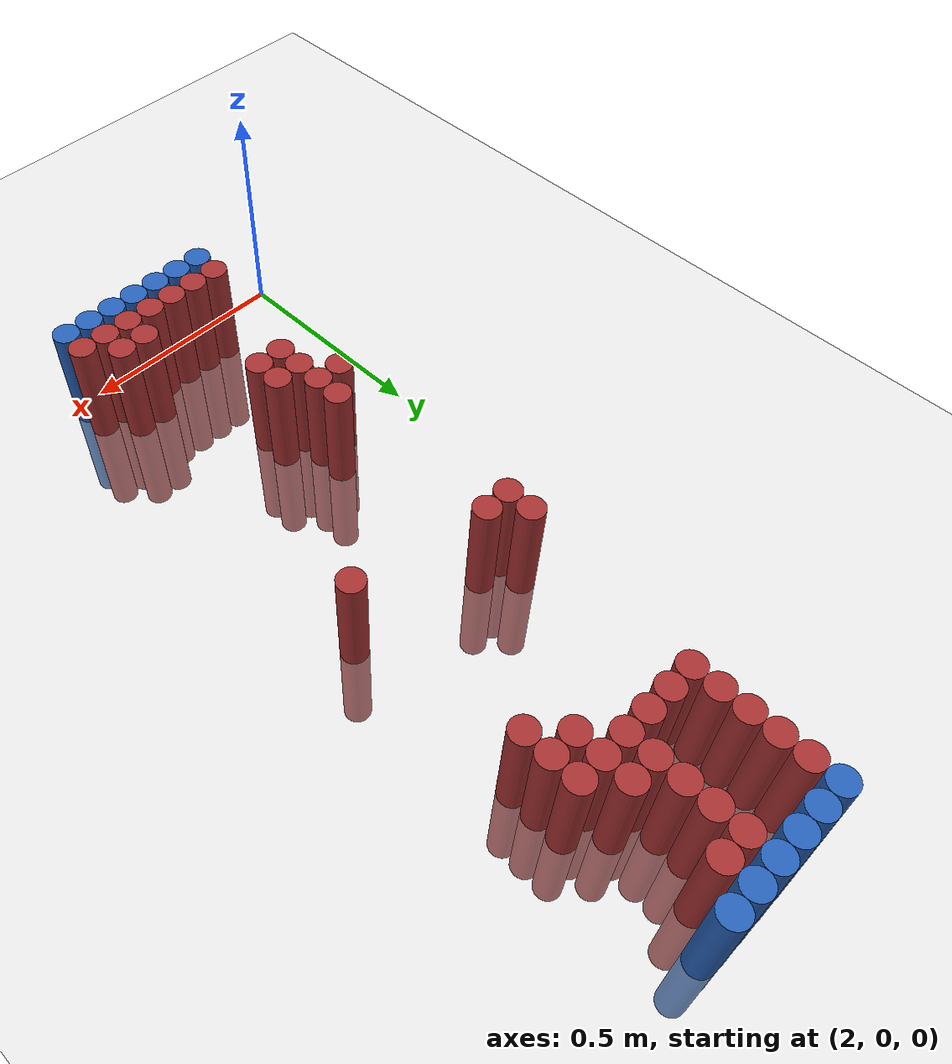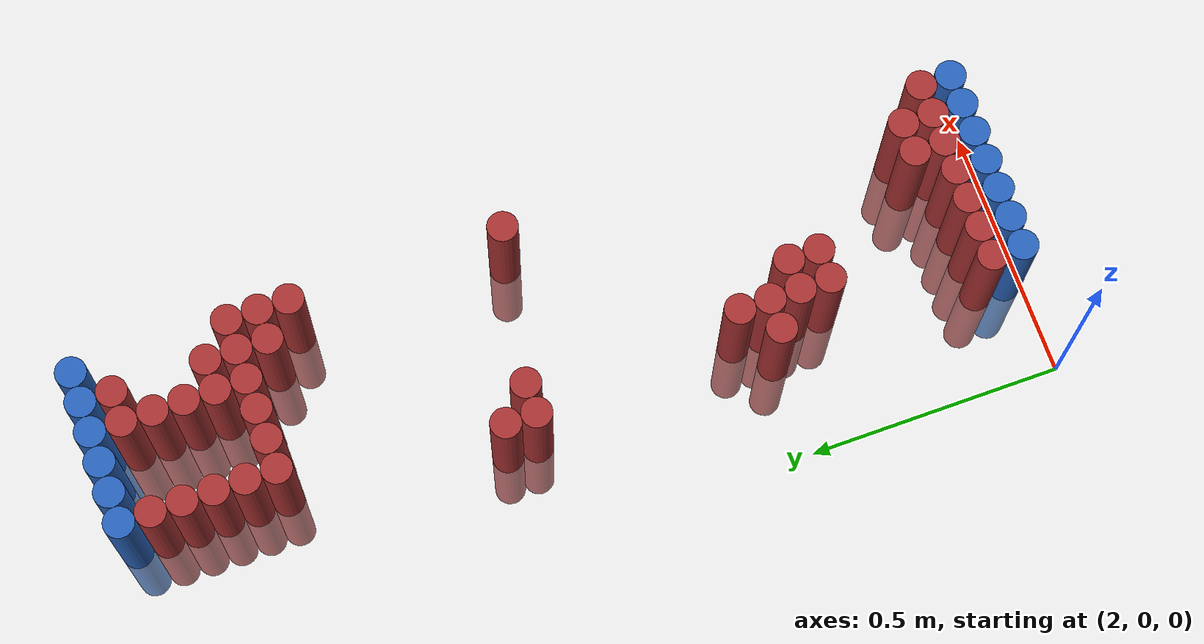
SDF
<sdf version="1.6">
 <world name="default">
  <model name="ground_plane">
   <static>1</static>
   <link name="link">
    <collision name="collision">
     <geometry><plane><normal>0 0 1</normal><size>100 100</size></plane></geometry>
     <surface><friction><ode><mu>100</mu><mu2>50</mu2></ode></friction></surface>
    </collision>
    <visual name="visual">
     <cast_shadows>0</cast_shadows>
     <geometry><plane><normal>0 0 1</normal><size>100 100</size></plane></geometry>
     <material>
      <script><uri>file://media/materials/scripts/gazebo.material</uri><name>Gazebo/Grey</name></script>
     </material>
    </visual>
   </link>
  </model>
  <model name="unit_cylinder_98">
   <static>1</static>
   <pose>2.250000 1.770000 0.000000 0.000000 0.000000 0.000000</pose>
   <link name="link">
    <inertial>
     <mass>1</mass>
     <inertia><ixx>0.145833</ixx><ixy>0</ixy><ixz>0</ixz><iyy>0.145833</iyy><iyz>0</iyz><izz>0.125</izz></inertia>
    </inertial>
    <collision name="collision">
     <geometry><cylinder><radius>0.030000</radius><length>0.5</length></cylinder></geometry>
    </collision>
    <visual name="visual">
     <geometry><cylinder><radius>0.030000</radius><length>0.5</length></cylinder></geometry>
     <material>
      <ambient>0.152000 0.379000 0.720000 1</ambient>
      <diffuse>0.152000 0.379000 0.720000 1</diffuse>
     </material>
     <material>
      <script><name>Gazebo/Grey</name><uri>file://media/materials/scripts/gazebo.material</uri></script>
     </material>
    </visual>
   </link>
  </model>
  <model name="unit_cylinder_99">
   <static>1</static>
   <pose>2.310000 1.770000 0.000000 0.000000 0.000000 0.000000</pose>
   <link name="link">
    <inertial>
     <mass>1</mass>
     <inertia><ixx>0.145833</ixx><ixy>0</ixy><ixz>0</ixz><iyy>0.145833</iyy><iyz>0</iyz><izz>0.125</izz></inertia>
    </inertial>
    <collision name="collision">
     <geometry><cylinder><radius>0.030000</radius><length>0.5</length></cylinder></geometry>
    </collision>
    <visual name="visual">
     <geometry><cylinder><radius>0.030000</radius><length>0.5</length></cylinder></geometry>
     <material>
      <ambient>0.152000 0.379000 0.720000 1</ambient>
      <diffuse>0.152000 0.379000 0.720000 1</diffuse>
     </material>
     <material>
      <script><name>Gazebo/Grey</name><uri>file://media/materials/scripts/gazebo.material</uri></script>
     </material>
    </visual>
   </link>
  </model>
  <model name="unit_cylinder_100">
   <static>1</static>
   <pose>2.370000 1.770000 0.000000 0.000000 0.000000 0.000000</pose>
   <link name="link">
    <inertial>
     <mass>1</mass>
     <inertia><ixx>0.145833</ixx><ixy>0</ixy><ixz>0</ixz><iyy>0.145833</iyy><iyz>0</iyz><izz>0.125</izz></inertia>
    </inertial>
    <collision name="collision">
     <geometry><cylinder><radius>0.030000</radius><length>0.5</length></cylinder></geometry>
    </collision>
    <visual name="visual">
     <geometry><cylinder><radius>0.030000</radius><length>0.5</length></cylinder></geometry>
     <material>
      <ambient>0.152000 0.379000 0.720000 1</ambient>
      <diffuse>0.152000 0.379000 0.720000 1</diffuse>
     </material>
     <material>
      <script><name>Gazebo/Grey</name><uri>file://media/materials/scripts/gazebo.material</uri></script>
     </material>
    </visual>
   </link>
  </model>
  <model name="unit_cylinder_101">
   <static>1</static>
   <pose>2.430000 1.770000 0.000000 0.000000 0.000000 0.000000</pose>
   <link name="link">
    <inertial>
     <mass>1</mass>
     <inertia><ixx>0.145833</ixx><ixy>0</ixy><ixz>0</ixz><iyy>0.145833</iyy><iyz>0</iyz><izz>0.125</izz></inertia>
    </inertial>
    <collision name="collision">
     <geometry><cylinder><radius>0.030000</radius><length>0.5</length></cylinder></geometry>
    </collision>
    <visual name="visual">
     <geometry><cylinder><radius>0.030000</radius><length>0.5</length></cylinder></geometry>
     <material>
      <ambient>0.152000 0.379000 0.720000 1</ambient>
      <diffuse>0.152000 0.379000 0.720000 1</diffuse>
     </material>
     <material>
      <script><name>Gazebo/Grey</name><uri>file://media/materials/scripts/gazebo.material</uri></script>
     </material>
    </visual>
   </link>
  </model>
  <model name="unit_cylinder_102">
   <static>1</static>
   <pose>2.490000 1.770000 0.000000 0.000000 0.000000 0.000000</pose>
   <link name="link">
    <inertial>
     <mass>1</mass>
     <inertia><ixx>0.145833</ixx><ixy>0</ixy><ixz>0</ixz><iyy>0.145833</iyy><iyz>0</iyz><izz>0.125</izz></inertia>
    </inertial>
    <collision name="collision">
     <geometry><cylinder><radius>0.030000</radius><length>0.5</length></cylinder></geometry>
    </collision>
    <visual name="visual">
     <geometry><cylinder><radius>0.030000</radius><length>0.5</length></cylinder></geometry>
     <material>
      <ambient>0.152000 0.379000 0.720000 1</ambient>
      <diffuse>0.152000 0.379000 0.720000 1</diffuse>
     </material>
     <material>
      <script><name>Gazebo/Grey</name><uri>file://media/materials/scripts/gazebo.material</uri></script>
     </material>
    </visual>
   </link>
  </model>
  <model name="unit_cylinder_103">
   <static>1</static>
   <pose>2.550000 1.770000 0.000000 0.000000 0.000000 0.000000</pose>
   <link name="link">
    <inertial>
     <mass>1</mass>
     <inertia><ixx>0.145833</ixx><ixy>0</ixy><ixz>0</ixz><iyy>0.145833</iyy><iyz>0</iyz><izz>0.125</izz></inertia>
    </inertial>
    <collision name="collision">
     <geometry><cylinder><radius>0.030000</radius><length>0.5</length></cylinder></geometry>
    </collision>
    <visual name="visual">
     <geometry><cylinder><radius>0.030000</radius><length>0.5</length></cylinder></geometry>
     <material>
      <ambient>0.152000 0.379000 0.720000 1</ambient>
      <diffuse>0.152000 0.379000 0.720000 1</diffuse>
     </material>
     <material>
      <script><name>Gazebo/Grey</name><uri>file://media/materials/scripts/gazebo.material</uri></script>
     </material>
    </visual>
   </link>
  </model>
  <model name="unit_cylinder_125">
   <static>1</static>
   <pose>2.250000 1.710000 0.000000 0.000000 0.000000 0.000000</pose>
   <link name="link">
    <inertial>
     <mass>1</mass>
     <inertia><ixx>0.145833</ixx><ixy>0</ixy><ixz>0</ixz><iyy>0.145833</iyy><iyz>0</iyz><izz>0.125</izz></inertia>
    </inertial>
    <collision name="collision">
     <geometry><cylinder><radius>0.030000</radius><length>0.5</length></cylinder></geometry>
    </collision>
    <visual name="visual">
     <geometry><cylinder><radius>0.030000</radius><length>0.5</length></cylinder></geometry>
     <material>
      <ambient>0.648000 0.192000 0.192000 1</ambient>
      <diffuse>0.648000 0.192000 0.192000 1</diffuse>
     </material>
     <material>
      <script><name>Gazebo/Grey</name><uri>file://media/materials/scripts/gazebo.material</uri></script>
     </material>
    </visual>
   </link>
  </model>
  <model name="unit_cylinder_126">
   <static>1</static>
   <pose>2.430000 1.710000 0.000000 0.000000 0.000000 0.000000</pose>
   <link name="link">
    <inertial>
     <mass>1</mass>
     <inertia><ixx>0.145833</ixx><ixy>0</ixy><ixz>0</ixz><iyy>0.145833</iyy><iyz>0</iyz><izz>0.125</izz></inertia>
    </inertial>
    <collision name="collision">
     <geometry><cylinder><radius>0.030000</radius><length>0.5</length></cylinder></geometry>
    </collision>
    <visual name="visual">
     <geometry><cylinder><radius>0.030000</radius><length>0.5</length></cylinder></geometry>
     <material>
      <ambient>0.648000 0.192000 0.192000 1</ambient>
      <diffuse>0.648000 0.192000 0.192000 1</diffuse>
     </material>
     <material>
      <script><name>Gazebo/Grey</name><uri>file://media/materials/scripts/gazebo.material</uri></script>
     </material>
    </visual>
   </link>
  </model>
  <model name="unit_cylinder_127">
   <static>1</static>
   <pose>2.490000 1.710000 0.000000 0.000000 0.000000 0.000000</pose>
   <link name="link">
    <inertial>
     <mass>1</mass>
     <inertia><ixx>0.145833</ixx><ixy>0</ixy><ixz>0</ixz><iyy>0.145833</iyy><iyz>0</iyz><izz>0.125</izz></inertia>
    </inertial>
    <collision name="collision">
     <geometry><cylinder><radius>0.030000</radius><length>0.5</length></cylinder></geometry>
    </collision>
    <visual name="visual">
     <geometry><cylinder><radius>0.030000</radius><length>0.5</length></cylinder></geometry>
     <material>
      <ambient>0.648000 0.192000 0.192000 1</ambient>
      <diffuse>0.648000 0.192000 0.192000 1</diffuse>
     </material>
     <material>
      <script><name>Gazebo/Grey</name><uri>file://media/materials/scripts/gazebo.material</uri></script>
     </material>
    </visual>
   </link>
  </model>
  <model name="unit_cylinder_135">
   <static>1</static>
   <pose>2.250000 1.650000 0.000000 0.000000 0.000000 0.000000</pose>
   <link name="link">
    <inertial>
     <mass>1</mass>
     <inertia><ixx>0.145833</ixx><ixy>0</ixy><ixz>0</ixz><iyy>0.145833</iyy><iyz>0</iyz><izz>0.125</izz></inertia>
    </inertial>
    <collision name="collision">
     <geometry><cylinder><radius>0.030000</radius><length>0.5</length></cylinder></geometry>
    </collision>
    <visual name="visual">
     <geometry><cylinder><radius>0.030000</radius><length>0.5</length></cylinder></geometry>
     <material>
      <ambient>0.648000 0.192000 0.192000 1</ambient>
      <diffuse>0.648000 0.192000 0.192000 1</diffuse>
     </material>
     <material>
      <script><name>Gazebo/Grey</name><uri>file://media/materials/scripts/gazebo.material</uri></script>
     </material>
    </visual>
   </link>
  </model>
  <model name="unit_cylinder_136">
   <static>1</static>
   <pose>2.430000 1.650000 0.000000 0.000000 0.000000 0.000000</pose>
   <link name="link">
    <inertial>
     <mass>1</mass>
     <inertia><ixx>0.145833</ixx><ixy>0</ixy><ixz>0</ixz><iyy>0.145833</iyy><iyz>0</iyz><izz>0.125</izz></inertia>
    </inertial>
    <collision name="collision">
     <geometry><cylinder><radius>0.030000</radius><length>0.5</length></cylinder></geometry>
    </collision>
    <visual name="visual">
     <geometry><cylinder><radius>0.030000</radius><length>0.5</length></cylinder></geometry>
     <material>
      <ambient>0.648000 0.192000 0.192000 1</ambient>
      <diffuse>0.648000 0.192000 0.192000 1</diffuse>
     </material>
     <material>
      <script><name>Gazebo/Grey</name><uri>file://media/materials/scripts/gazebo.material</uri></script>
     </material>
    </visual>
   </link>
  </model>
  <model name="unit_cylinder_140">
   <static>1</static>
   <pose>2.250000 1.590000 0.000000 0.000000 0.000000 0.000000</pose>
   <link name="link">
    <inertial>
     <mass>1</mass>
     <inertia><ixx>0.145833</ixx><ixy>0</ixy><ixz>0</ixz><iyy>0.145833</iyy><iyz>0</iyz><izz>0.125</izz></inertia>
    </inertial>
    <collision name="collision">
     <geometry><cylinder><radius>0.030000</radius><length>0.5</length></cylinder></geometry>
    </collision>
    <visual name="visual">
     <geometry><cylinder><radius>0.030000</radius><length>0.5</length></cylinder></geometry>
     <material>
      <ambient>0.648000 0.192000 0.192000 1</ambient>
      <diffuse>0.648000 0.192000 0.192000 1</diffuse>
     </material>
     <material>
      <script><name>Gazebo/Grey</name><uri>file://media/materials/scripts/gazebo.material</uri></script>
     </material>
    </visual>
   </link>
  </model>
  <model name="unit_cylinder_141">
   <static>1</static>
   <pose>2.430000 1.590000 0.000000 0.000000 0.000000 0.000000</pose>
   <link name="link">
    <inertial>
     <mass>1</mass>
     <inertia><ixx>0.145833</ixx><ixy>0</ixy><ixz>0</ixz><iyy>0.145833</iyy><iyz>0</iyz><izz>0.125</izz></inertia>
    </inertial>
    <collision name="collision">
     <geometry><cylinder><radius>0.030000</radius><length>0.5</length></cylinder></geometry>
    </collision>
    <visual name="visual">
     <geometry><cylinder><radius>0.030000</radius><length>0.5</length></cylinder></geometry>
     <material>
      <ambient>0.648000 0.192000 0.192000 1</ambient>
      <diffuse>0.648000 0.192000 0.192000 1</diffuse>
     </material>
     <material>
      <script><name>Gazebo/Grey</name><uri>file://media/materials/scripts/gazebo.material</uri></script>
     </material>
    </visual>
   </link>
  </model>
  <model name="unit_cylinder_151">
   <static>1</static>
   <pose>2.250000 1.530000 0.000000 0.000000 0.000000 0.000000</pose>
   <link name="link">
    <inertial>
     <mass>1</mass>
     <inertia><ixx>0.145833</ixx><ixy>0</ixy><ixz>0</ixz><iyy>0.145833</iyy><iyz>0</iyz><izz>0.125</izz></inertia>
    </inertial>
    <collision name="collision">
     <geometry><cylinder><radius>0.030000</radius><length>0.5</length></cylinder></geometry>
    </collision>
    <visual name="visual">
     <geometry><cylinder><radius>0.030000</radius><length>0.5</length></cylinder></geometry>
     <material>
      <ambient>0.648000 0.192000 0.192000 1</ambient>
      <diffuse>0.648000 0.192000 0.192000 1</diffuse>
     </material>
     <material>
      <script><name>Gazebo/Grey</name><uri>file://media/materials/scripts/gazebo.material</uri></script>
     </material>
    </visual>
   </link>
  </model>
  <model name="unit_cylinder_152">
   <static>1</static>
   <pose>2.430000 1.530000 0.000000 0.000000 0.000000 0.000000</pose>
   <link name="link">
    <inertial>
     <mass>1</mass>
     <inertia><ixx>0.145833</ixx><ixy>0</ixy><ixz>0</ixz><iyy>0.145833</iyy><iyz>0</iyz><izz>0.125</izz></inertia>
    </inertial>
    <collision name="collision">
     <geometry><cylinder><radius>0.030000</radius><length>0.5</length></cylinder></geometry>
    </collision>
    <visual name="visual">
     <geometry><cylinder><radius>0.030000</radius><length>0.5</length></cylinder></geometry>
     <material>
      <ambient>0.648000 0.192000 0.192000 1</ambient>
      <diffuse>0.648000 0.192000 0.192000 1</diffuse>
     </material>
     <material>
      <script><name>Gazebo/Grey</name><uri>file://media/materials/scripts/gazebo.material</uri></script>
     </material>
    </visual>
   </link>
  </model>
  <model name="unit_cylinder_153">
   <static>1</static>
   <pose>2.490000 1.530000 0.000000 0.000000 0.000000 0.000000</pose>
   <link name="link">
    <inertial>
     <mass>1</mass>
     <inertia><ixx>0.145833</ixx><ixy>0</ixy><ixz>0</ixz><iyy>0.145833</iyy><iyz>0</iyz><izz>0.125</izz></inertia>
    </inertial>
    <collision name="collision">
     <geometry><cylinder><radius>0.030000</radius><length>0.5</length></cylinder></geometry>
    </collision>
    <visual name="visual">
     <geometry><cylinder><radius>0.030000</radius><length>0.5</length></cylinder></geometry>
     <material>
      <ambient>0.648000 0.192000 0.192000 1</ambient>
      <diffuse>0.648000 0.192000 0.192000 1</diffuse>
     </material>
     <material>
      <script><name>Gazebo/Grey</name><uri>file://media/materials/scripts/gazebo.material</uri></script>
     </material>
    </visual>
   </link>
  </model>
  <model name="unit_cylinder_158">
   <static>1</static>
   <pose>2.250000 1.470000 0.000000 0.000000 0.000000 0.000000</pose>
   <link name="link">
    <inertial>
     <mass>1</mass>
     <inertia><ixx>0.145833</ixx><ixy>0</ixy><ixz>0</ixz><iyy>0.145833</iyy><iyz>0</iyz><izz>0.125</izz></inertia>
    </inertial>
    <collision name="collision">
     <geometry><cylinder><radius>0.030000</radius><length>0.5</length></cylinder></geometry>
    </collision>
    <visual name="visual">
     <geometry><cylinder><radius>0.030000</radius><length>0.5</length></cylinder></geometry>
     <material>
      <ambient>0.648000 0.192000 0.192000 1</ambient>
      <diffuse>0.648000 0.192000 0.192000 1</diffuse>
     </material>
     <material>
      <script><name>Gazebo/Grey</name><uri>file://media/materials/scripts/gazebo.material</uri></script>
     </material>
    </visual>
   </link>
  </model>
  <model name="unit_cylinder_159">
   <static>1</static>
   <pose>2.310000 1.470000 0.000000 0.000000 0.000000 0.000000</pose>
   <link name="link">
    <inertial>
     <mass>1</mass>
     <inertia><ixx>0.145833</ixx><ixy>0</ixy><ixz>0</ixz><iyy>0.145833</iyy><iyz>0</iyz><izz>0.125</izz></inertia>
    </inertial>
    <collision name="collision">
     <geometry><cylinder><radius>0.030000</radius><length>0.5</length></cylinder></geometry>
    </collision>
    <visual name="visual">
     <geometry><cylinder><radius>0.030000</radius><length>0.5</length></cylinder></geometry>
     <material>
      <ambient>0.648000 0.192000 0.192000 1</ambient>
      <diffuse>0.648000 0.192000 0.192000 1</diffuse>
     </material>
     <material>
      <script><name>Gazebo/Grey</name><uri>file://media/materials/scripts/gazebo.material</uri></script>
     </material>
    </visual>
   </link>
  </model>
  <model name="unit_cylinder_160">
   <static>1</static>
   <pose>2.370000 1.470000 0.000000 0.000000 0.000000 0.000000</pose>
   <link name="link">
    <inertial>
     <mass>1</mass>
     <inertia><ixx>0.145833</ixx><ixy>0</ixy><ixz>0</ixz><iyy>0.145833</iyy><iyz>0</iyz><izz>0.125</izz></inertia>
    </inertial>
    <collision name="collision">
     <geometry><cylinder><radius>0.030000</radius><length>0.5</length></cylinder></geometry>
    </collision>
    <visual name="visual">
     <geometry><cylinder><radius>0.030000</radius><length>0.5</length></cylinder></geometry>
     <material>
      <ambient>0.648000 0.192000 0.192000 1</ambient>
      <diffuse>0.648000 0.192000 0.192000 1</diffuse>
     </material>
     <material>
      <script><name>Gazebo/Grey</name><uri>file://media/materials/scripts/gazebo.material</uri></script>
     </material>
    </visual>
   </link>
  </model>
  <model name="unit_cylinder_161">
   <static>1</static>
   <pose>2.430000 1.470000 0.000000 0.000000 0.000000 0.000000</pose>
   <link name="link">
    <inertial>
     <mass>1</mass>
     <inertia><ixx>0.145833</ixx><ixy>0</ixy><ixz>0</ixz><iyy>0.145833</iyy><iyz>0</iyz><izz>0.125</izz></inertia>
    </inertial>
    <collision name="collision">
     <geometry><cylinder><radius>0.030000</radius><length>0.5</length></cylinder></geometry>
    </collision>
    <visual name="visual">
     <geometry><cylinder><radius>0.030000</radius><length>0.5</length></cylinder></geometry>
     <material>
      <ambient>0.648000 0.192000 0.192000 1</ambient>
      <diffuse>0.648000 0.192000 0.192000 1</diffuse>
     </material>
     <material>
      <script><name>Gazebo/Grey</name><uri>file://media/materials/scripts/gazebo.material</uri></script>
     </material>
    </visual>
   </link>
  </model>
  <model name="unit_cylinder_162">
   <static>1</static>
   <pose>2.490000 1.470000 0.000000 0.000000 0.000000 0.000000</pose>
   <link name="link">
    <inertial>
     <mass>1</mass>
     <inertia><ixx>0.145833</ixx><ixy>0</ixy><ixz>0</ixz><iyy>0.145833</iyy><iyz>0</iyz><izz>0.125</izz></inertia>
    </inertial>
    <collision name="collision">
     <geometry><cylinder><radius>0.030000</radius><length>0.5</length></cylinder></geometry>
    </collision>
    <visual name="visual">
     <geometry><cylinder><radius>0.030000</radius><length>0.5</length></cylinder></geometry>
     <material>
      <ambient>0.648000 0.192000 0.192000 1</ambient>
      <diffuse>0.648000 0.192000 0.192000 1</diffuse>
     </material>
     <material>
      <script><name>Gazebo/Grey</name><uri>file://media/materials/scripts/gazebo.material</uri></script>
     </material>
    </visual>
   </link>
  </model>
  <model name="unit_cylinder_163">
   <static>1</static>
   <pose>2.550000 1.470000 0.000000 0.000000 0.000000 0.000000</pose>
   <link name="link">
    <inertial>
     <mass>1</mass>
     <inertia><ixx>0.145833</ixx><ixy>0</ixy><ixz>0</ixz><iyy>0.145833</iyy><iyz>0</iyz><izz>0.125</izz></inertia>
    </inertial>
    <collision name="collision">
     <geometry><cylinder><radius>0.030000</radius><length>0.5</length></cylinder></geometry>
    </collision>
    <visual name="visual">
     <geometry><cylinder><radius>0.030000</radius><length>0.5</length></cylinder></geometry>
     <material>
      <ambient>0.648000 0.192000 0.192000 1</ambient>
      <diffuse>0.648000 0.192000 0.192000 1</diffuse>
     </material>
     <material>
      <script><name>Gazebo/Grey</name><uri>file://media/materials/scripts/gazebo.material</uri></script>
     </material>
    </visual>
   </link>
  </model>
  <model name="unit_cylinder_170">
   <static>1</static>
   <pose>2.490000 1.410000 0.000000 0.000000 0.000000 0.000000</pose>
   <link name="link">
    <inertial>
     <mass>1</mass>
     <inertia><ixx>0.145833</ixx><ixy>0</ixy><ixz>0</ixz><iyy>0.145833</iyy><iyz>0</iyz><izz>0.125</izz></inertia>
    </inertial>
    <collision name="collision">
     <geometry><cylinder><radius>0.030000</radius><length>0.5</length></cylinder></geometry>
    </collision>
    <visual name="visual">
     <geometry><cylinder><radius>0.030000</radius><length>0.5</length></cylinder></geometry>
     <material>
      <ambient>0.648000 0.192000 0.192000 1</ambient>
      <diffuse>0.648000 0.192000 0.192000 1</diffuse>
     </material>
     <material>
      <script><name>Gazebo/Grey</name><uri>file://media/materials/scripts/gazebo.material</uri></script>
     </material>
    </visual>
   </link>
  </model>
  <model name="unit_cylinder_171">
   <static>1</static>
   <pose>2.550000 1.410000 0.000000 0.000000 0.000000 0.000000</pose>
   <link name="link">
    <inertial>
     <mass>1</mass>
     <inertia><ixx>0.145833</ixx><ixy>0</ixy><ixz>0</ixz><iyy>0.145833</iyy><iyz>0</iyz><izz>0.125</izz></inertia>
    </inertial>
    <collision name="collision">
     <geometry><cylinder><radius>0.030000</radius><length>0.5</length></cylinder></geometry>
    </collision>
    <visual name="visual">
     <geometry><cylinder><radius>0.030000</radius><length>0.5</length></cylinder></geometry>
     <material>
      <ambient>0.648000 0.192000 0.192000 1</ambient>
      <diffuse>0.648000 0.192000 0.192000 1</diffuse>
     </material>
     <material>
      <script><name>Gazebo/Grey</name><uri>file://media/materials/scripts/gazebo.material</uri></script>
     </material>
    </visual>
   </link>
  </model>
  <model name="unit_cylinder_176">
   <static>1</static>
   <pose>2.550000 1.350000 0.000000 0.000000 0.000000 0.000000</pose>
   <link name="link">
    <inertial>
     <mass>1</mass>
     <inertia><ixx>0.145833</ixx><ixy>0</ixy><ixz>0</ixz><iyy>0.145833</iyy><iyz>0</iyz><izz>0.125</izz></inertia>
    </inertial>
    <collision name="collision">
     <geometry><cylinder><radius>0.030000</radius><length>0.5</length></cylinder></geometry>
    </collision>
    <visual name="visual">
     <geometry><cylinder><radius>0.030000</radius><length>0.5</length></cylinder></geometry>
     <material>
      <ambient>0.648000 0.192000 0.192000 1</ambient>
      <diffuse>0.648000 0.192000 0.192000 1</diffuse>
     </material>
     <material>
      <script><name>Gazebo/Grey</name><uri>file://media/materials/scripts/gazebo.material</uri></script>
     </material>
    </visual>
   </link>
  </model>
  <model name="unit_cylinder_188">
   <static>1</static>
   <pose>2.190000 1.050000 0.000000 0.000000 0.000000 0.000000</pose>
   <link name="link">
    <inertial>
     <mass>1</mass>
     <inertia><ixx>0.145833</ixx><ixy>0</ixy><ixz>0</ixz><iyy>0.145833</iyy><iyz>0</iyz><izz>0.125</izz></inertia>
    </inertial>
    <collision name="collision">
     <geometry><cylinder><radius>0.030000</radius><length>0.5</length></cylinder></geometry>
    </collision>
    <visual name="visual">
     <geometry><cylinder><radius>0.030000</radius><length>0.5</length></cylinder></geometry>
     <material>
      <ambient>0.648000 0.192000 0.192000 1</ambient>
      <diffuse>0.648000 0.192000 0.192000 1</diffuse>
     </material>
     <material>
      <script><name>Gazebo/Grey</name><uri>file://media/materials/scripts/gazebo.material</uri></script>
     </material>
    </visual>
   </link>
  </model>
  <model name="unit_cylinder_193">
   <static>1</static>
   <pose>2.190000 0.990000 0.000000 0.000000 0.000000 0.000000</pose>
   <link name="link">
    <inertial>
     <mass>1</mass>
     <inertia><ixx>0.145833</ixx><ixy>0</ixy><ixz>0</ixz><iyy>0.145833</iyy><iyz>0</iyz><izz>0.125</izz></inertia>
    </inertial>
    <collision name="collision">
     <geometry><cylinder><radius>0.030000</radius><length>0.5</length></cylinder></geometry>
    </collision>
    <visual name="visual">
     <geometry><cylinder><radius>0.030000</radius><length>0.5</length></cylinder></geometry>
     <material>
      <ambient>0.648000 0.192000 0.192000 1</ambient>
      <diffuse>0.648000 0.192000 0.192000 1</diffuse>
     </material>
     <material>
      <script><name>Gazebo/Grey</name><uri>file://media/materials/scripts/gazebo.material</uri></script>
     </material>
    </visual>
   </link>
  </model>
  <model name="unit_cylinder_194">
   <static>1</static>
   <pose>2.250000 0.990000 0.000000 0.000000 0.000000 0.000000</pose>
   <link name="link">
    <inertial>
     <mass>1</mass>
     <inertia><ixx>0.145833</ixx><ixy>0</ixy><ixz>0</ixz><iyy>0.145833</iyy><iyz>0</iyz><izz>0.125</izz></inertia>
    </inertial>
    <collision name="collision">
     <geometry><cylinder><radius>0.030000</radius><length>0.5</length></cylinder></geometry>
    </collision>
    <visual name="visual">
     <geometry><cylinder><radius>0.030000</radius><length>0.5</length></cylinder></geometry>
     <material>
      <ambient>0.648000 0.192000 0.192000 1</ambient>
      <diffuse>0.648000 0.192000 0.192000 1</diffuse>
     </material>
     <material>
      <script><name>Gazebo/Grey</name><uri>file://media/materials/scripts/gazebo.material</uri></script>
     </material>
    </visual>
   </link>
  </model>
  <model name="unit_cylinder_199">
   <static>1</static>
   <pose>2.550000 0.930000 0.000000 0.000000 0.000000 0.000000</pose>
   <link name="link">
    <inertial>
     <mass>1</mass>
     <inertia><ixx>0.145833</ixx><ixy>0</ixy><ixz>0</ixz><iyy>0.145833</iyy><iyz>0</iyz><izz>0.125</izz></inertia>
    </inertial>
    <collision name="collision">
     <geometry><cylinder><radius>0.030000</radius><length>0.5</length></cylinder></geometry>
    </collision>
    <visual name="visual">
     <geometry><cylinder><radius>0.030000</radius><length>0.5</length></cylinder></geometry>
     <material>
      <ambient>0.648000 0.192000 0.192000 1</ambient>
      <diffuse>0.648000 0.192000 0.192000 1</diffuse>
     </material>
     <material>
      <script><name>Gazebo/Grey</name><uri>file://media/materials/scripts/gazebo.material</uri></script>
     </material>
    </visual>
   </link>
  </model>
  <model name="unit_cylinder_216">
   <static>1</static>
   <pose>2.250000 0.570000 0.000000 0.000000 0.000000 0.000000</pose>
   <link name="link">
    <inertial>
     <mass>1</mass>
     <inertia><ixx>0.145833</ixx><ixy>0</ixy><ixz>0</ixz><iyy>0.145833</iyy><iyz>0</iyz><izz>0.125</izz></inertia>
    </inertial>
    <collision name="collision">
     <geometry><cylinder><radius>0.030000</radius><length>0.5</length></cylinder></geometry>
    </collision>
    <visual name="visual">
     <geometry><cylinder><radius>0.030000</radius><length>0.5</length></cylinder></geometry>
     <material>
      <ambient>0.648000 0.192000 0.192000 1</ambient>
      <diffuse>0.648000 0.192000 0.192000 1</diffuse>
     </material>
     <material>
      <script><name>Gazebo/Grey</name><uri>file://media/materials/scripts/gazebo.material</uri></script>
     </material>
    </visual>
   </link>
  </model>
  <model name="unit_cylinder_223">
   <static>1</static>
   <pose>2.190000 0.510000 0.000000 0.000000 0.000000 0.000000</pose>
   <link name="link">
    <inertial>
     <mass>1</mass>
     <inertia><ixx>0.145833</ixx><ixy>0</ixy><ixz>0</ixz><iyy>0.145833</iyy><iyz>0</iyz><izz>0.125</izz></inertia>
    </inertial>
    <collision name="collision">
     <geometry><cylinder><radius>0.030000</radius><length>0.5</length></cylinder></geometry>
    </collision>
    <visual name="visual">
     <geometry><cylinder><radius>0.030000</radius><length>0.5</length></cylinder></geometry>
     <material>
      <ambient>0.648000 0.192000 0.192000 1</ambient>
      <diffuse>0.648000 0.192000 0.192000 1</diffuse>
     </material>
     <material>
      <script><name>Gazebo/Grey</name><uri>file://media/materials/scripts/gazebo.material</uri></script>
     </material>
    </visual>
   </link>
  </model>
  <model name="unit_cylinder_224">
   <static>1</static>
   <pose>2.250000 0.510000 0.000000 0.000000 0.000000 0.000000</pose>
   <link name="link">
    <inertial>
     <mass>1</mass>
     <inertia><ixx>0.145833</ixx><ixy>0</ixy><ixz>0</ixz><iyy>0.145833</iyy><iyz>0</iyz><izz>0.125</izz></inertia>
    </inertial>
    <collision name="collision">
     <geometry><cylinder><radius>0.030000</radius><length>0.5</length></cylinder></geometry>
    </collision>
    <visual name="visual">
     <geometry><cylinder><radius>0.030000</radius><length>0.5</length></cylinder></geometry>
     <material>
      <ambient>0.648000 0.192000 0.192000 1</ambient>
      <diffuse>0.648000 0.192000 0.192000 1</diffuse>
     </material>
     <material>
      <script><name>Gazebo/Grey</name><uri>file://media/materials/scripts/gazebo.material</uri></script>
     </material>
    </visual>
   </link>
  </model>
  <model name="unit_cylinder_229">
   <static>1</static>
   <pose>2.250000 0.450000 0.000000 0.000000 0.000000 0.000000</pose>
   <link name="link">
    <inertial>
     <mass>1</mass>
     <inertia><ixx>0.145833</ixx><ixy>0</ixy><ixz>0</ixz><iyy>0.145833</iyy><iyz>0</iyz><izz>0.125</izz></inertia>
    </inertial>
    <collision name="collision">
     <geometry><cylinder><radius>0.030000</radius><length>0.5</length></cylinder></geometry>
    </collision>
    <visual name="visual">
     <geometry><cylinder><radius>0.030000</radius><length>0.5</length></cylinder></geometry>
     <material>
      <ambient>0.648000 0.192000 0.192000 1</ambient>
      <diffuse>0.648000 0.192000 0.192000 1</diffuse>
     </material>
     <material>
      <script><name>Gazebo/Grey</name><uri>file://media/materials/scripts/gazebo.material</uri></script>
     </material>
    </visual>
   </link>
  </model>
  <model name="unit_cylinder_230">
   <static>1</static>
   <pose>2.310000 0.450000 0.000000 0.000000 0.000000 0.000000</pose>
   <link name="link">
    <inertial>
     <mass>1</mass>
     <inertia><ixx>0.145833</ixx><ixy>0</ixy><ixz>0</ixz><iyy>0.145833</iyy><iyz>0</iyz><izz>0.125</izz></inertia>
    </inertial>
    <collision name="collision">
     <geometry><cylinder><radius>0.030000</radius><length>0.5</length></cylinder></geometry>
    </collision>
    <visual name="visual">
     <geometry><cylinder><radius>0.030000</radius><length>0.5</length></cylinder></geometry>
     <material>
      <ambient>0.648000 0.192000 0.192000 1</ambient>
      <diffuse>0.648000 0.192000 0.192000 1</diffuse>
     </material>
     <material>
      <script><name>Gazebo/Grey</name><uri>file://media/materials/scripts/gazebo.material</uri></script>
     </material>
    </visual>
   </link>
  </model>
  <model name="unit_cylinder_237">
   <static>1</static>
   <pose>2.250000 0.390000 0.000000 0.000000 0.000000 0.000000</pose>
   <link name="link">
    <inertial>
     <mass>1</mass>
     <inertia><ixx>0.145833</ixx><ixy>0</ixy><ixz>0</ixz><iyy>0.145833</iyy><iyz>0</iyz><izz>0.125</izz></inertia>
    </inertial>
    <collision name="collision">
     <geometry><cylinder><radius>0.030000</radius><length>0.5</length></cylinder></geometry>
    </collision>
    <visual name="visual">
     <geometry><cylinder><radius>0.030000</radius><length>0.5</length></cylinder></geometry>
     <material>
      <ambient>0.648000 0.192000 0.192000 1</ambient>
      <diffuse>0.648000 0.192000 0.192000 1</diffuse>
     </material>
     <material>
      <script><name>Gazebo/Grey</name><uri>file://media/materials/scripts/gazebo.material</uri></script>
     </material>
    </visual>
   </link>
  </model>
  <model name="unit_cylinder_238">
   <static>1</static>
   <pose>2.310000 0.390000 0.000000 0.000000 0.000000 0.000000</pose>
   <link name="link">
    <inertial>
     <mass>1</mass>
     <inertia><ixx>0.145833</ixx><ixy>0</ixy><ixz>0</ixz><iyy>0.145833</iyy><iyz>0</iyz><izz>0.125</izz></inertia>
    </inertial>
    <collision name="collision">
     <geometry><cylinder><radius>0.030000</radius><length>0.5</length></cylinder></geometry>
    </collision>
    <visual name="visual">
     <geometry><cylinder><radius>0.030000</radius><length>0.5</length></cylinder></geometry>
     <material>
      <ambient>0.648000 0.192000 0.192000 1</ambient>
      <diffuse>0.648000 0.192000 0.192000 1</diffuse>
     </material>
     <material>
      <script><name>Gazebo/Grey</name><uri>file://media/materials/scripts/gazebo.material</uri></script>
     </material>
    </visual>
   </link>
  </model>
  <model name="unit_cylinder_252">
   <static>1</static>
   <pose>2.430000 0.150000 0.000000 0.000000 0.000000 0.000000</pose>
   <link name="link">
    <inertial>
     <mass>1</mass>
     <inertia><ixx>0.145833</ixx><ixy>0</ixy><ixz>0</ixz><iyy>0.145833</iyy><iyz>0</iyz><izz>0.125</izz></inertia>
    </inertial>
    <collision name="collision">
     <geometry><cylinder><radius>0.030000</radius><length>0.5</length></cylinder></geometry>
    </collision>
    <visual name="visual">
     <geometry><cylinder><radius>0.030000</radius><length>0.5</length></cylinder></geometry>
     <material>
      <ambient>0.648000 0.192000 0.192000 1</ambient>
      <diffuse>0.648000 0.192000 0.192000 1</diffuse>
     </material>
     <material>
      <script><name>Gazebo/Grey</name><uri>file://media/materials/scripts/gazebo.material</uri></script>
     </material>
    </visual>
   </link>
  </model>
  <model name="unit_cylinder_253">
   <static>1</static>
   <pose>2.490000 0.150000 0.000000 0.000000 0.000000 0.000000</pose>
   <link name="link">
    <inertial>
     <mass>1</mass>
     <inertia><ixx>0.145833</ixx><ixy>0</ixy><ixz>0</ixz><iyy>0.145833</iyy><iyz>0</iyz><izz>0.125</izz></inertia>
    </inertial>
    <collision name="collision">
     <geometry><cylinder><radius>0.030000</radius><length>0.5</length></cylinder></geometry>
    </collision>
    <visual name="visual">
     <geometry><cylinder><radius>0.030000</radius><length>0.5</length></cylinder></geometry>
     <material>
      <ambient>0.648000 0.192000 0.192000 1</ambient>
      <diffuse>0.648000 0.192000 0.192000 1</diffuse>
     </material>
     <material>
      <script><name>Gazebo/Grey</name><uri>file://media/materials/scripts/gazebo.material</uri></script>
     </material>
    </visual>
   </link>
  </model>
  <model name="unit_cylinder_259">
   <static>1</static>
   <pose>2.190000 0.090000 0.000000 0.000000 0.000000 0.000000</pose>
   <link name="link">
    <inertial>
     <mass>1</mass>
     <inertia><ixx>0.145833</ixx><ixy>0</ixy><ixz>0</ixz><iyy>0.145833</iyy><iyz>0</iyz><izz>0.125</izz></inertia>
    </inertial>
    <collision name="collision">
     <geometry><cylinder><radius>0.030000</radius><length>0.5</length></cylinder></geometry>
    </collision>
    <visual name="visual">
     <geometry><cylinder><radius>0.030000</radius><length>0.5</length></cylinder></geometry>
     <material>
      <ambient>0.648000 0.192000 0.192000 1</ambient>
      <diffuse>0.648000 0.192000 0.192000 1</diffuse>
     </material>
     <material>
      <script><name>Gazebo/Grey</name><uri>file://media/materials/scripts/gazebo.material</uri></script>
     </material>
    </visual>
   </link>
  </model>
  <model name="unit_cylinder_260">
   <static>1</static>
   <pose>2.250000 0.090000 0.000000 0.000000 0.000000 0.000000</pose>
   <link name="link">
    <inertial>
     <mass>1</mass>
     <inertia><ixx>0.145833</ixx><ixy>0</ixy><ixz>0</ixz><iyy>0.145833</iyy><iyz>0</iyz><izz>0.125</izz></inertia>
    </inertial>
    <collision name="collision">
     <geometry><cylinder><radius>0.030000</radius><length>0.5</length></cylinder></geometry>
    </collision>
    <visual name="visual">
     <geometry><cylinder><radius>0.030000</radius><length>0.5</length></cylinder></geometry>
     <material>
      <ambient>0.648000 0.192000 0.192000 1</ambient>
      <diffuse>0.648000 0.192000 0.192000 1</diffuse>
     </material>
     <material>
      <script><name>Gazebo/Grey</name><uri>file://media/materials/scripts/gazebo.material</uri></script>
     </material>
    </visual>
   </link>
  </model>
  <model name="unit_cylinder_261">
   <static>1</static>
   <pose>2.310000 0.090000 0.000000 0.000000 0.000000 0.000000</pose>
   <link name="link">
    <inertial>
     <mass>1</mass>
     <inertia><ixx>0.145833</ixx><ixy>0</ixy><ixz>0</ixz><iyy>0.145833</iyy><iyz>0</iyz><izz>0.125</izz></inertia>
    </inertial>
    <collision name="collision">
     <geometry><cylinder><radius>0.030000</radius><length>0.5</length></cylinder></geometry>
    </collision>
    <visual name="visual">
     <geometry><cylinder><radius>0.030000</radius><length>0.5</length></cylinder></geometry>
     <material>
      <ambient>0.648000 0.192000 0.192000 1</ambient>
      <diffuse>0.648000 0.192000 0.192000 1</diffuse>
     </material>
     <material>
      <script><name>Gazebo/Grey</name><uri>file://media/materials/scripts/gazebo.material</uri></script>
     </material>
    </visual>
   </link>
  </model>
  <model name="unit_cylinder_262">
   <static>1</static>
   <pose>2.370000 0.090000 0.000000 0.000000 0.000000 0.000000</pose>
   <link name="link">
    <inertial>
     <mass>1</mass>
     <inertia><ixx>0.145833</ixx><ixy>0</ixy><ixz>0</ixz><iyy>0.145833</iyy><iyz>0</iyz><izz>0.125</izz></inertia>
    </inertial>
    <collision name="collision">
     <geometry><cylinder><radius>0.030000</radius><length>0.5</length></cylinder></geometry>
    </collision>
    <visual name="visual">
     <geometry><cylinder><radius>0.030000</radius><length>0.5</length></cylinder></geometry>
     <material>
      <ambient>0.648000 0.192000 0.192000 1</ambient>
      <diffuse>0.648000 0.192000 0.192000 1</diffuse>
     </material>
     <material>
      <script><name>Gazebo/Grey</name><uri>file://media/materials/scripts/gazebo.material</uri></script>
     </material>
    </visual>
   </link>
  </model>
  <model name="unit_cylinder_263">
   <static>1</static>
   <pose>2.430000 0.090000 0.000000 0.000000 0.000000 0.000000</pose>
   <link name="link">
    <inertial>
     <mass>1</mass>
     <inertia><ixx>0.145833</ixx><ixy>0</ixy><ixz>0</ixz><iyy>0.145833</iyy><iyz>0</iyz><izz>0.125</izz></inertia>
    </inertial>
    <collision name="collision">
     <geometry><cylinder><radius>0.030000</radius><length>0.5</length></cylinder></geometry>
    </collision>
    <visual name="visual">
     <geometry><cylinder><radius>0.030000</radius><length>0.5</length></cylinder></geometry>
     <material>
      <ambient>0.648000 0.192000 0.192000 1</ambient>
      <diffuse>0.648000 0.192000 0.192000 1</diffuse>
     </material>
     <material>
      <script><name>Gazebo/Grey</name><uri>file://media/materials/scripts/gazebo.material</uri></script>
     </material>
    </visual>
   </link>
  </model>
  <model name="unit_cylinder_264">
   <static>1</static>
   <pose>2.490000 0.090000 0.000000 0.000000 0.000000 0.000000</pose>
   <link name="link">
    <inertial>
     <mass>1</mass>
     <inertia><ixx>0.145833</ixx><ixy>0</ixy><ixz>0</ixz><iyy>0.145833</iyy><iyz>0</iyz><izz>0.125</izz></inertia>
    </inertial>
    <collision name="collision">
     <geometry><cylinder><radius>0.030000</radius><length>0.5</length></cylinder></geometry>
    </collision>
    <visual name="visual">
     <geometry><cylinder><radius>0.030000</radius><length>0.5</length></cylinder></geometry>
     <material>
      <ambient>0.648000 0.192000 0.192000 1</ambient>
      <diffuse>0.648000 0.192000 0.192000 1</diffuse>
     </material>
     <material>
      <script><name>Gazebo/Grey</name><uri>file://media/materials/scripts/gazebo.material</uri></script>
     </material>
    </visual>
   </link>
  </model>
  <model name="unit_cylinder_265">
   <static>1</static>
   <pose>2.550000 0.090000 0.000000 0.000000 0.000000 0.000000</pose>
   <link name="link">
    <inertial>
     <mass>1</mass>
     <inertia><ixx>0.145833</ixx><ixy>0</ixy><ixz>0</ixz><iyy>0.145833</iyy><iyz>0</iyz><izz>0.125</izz></inertia>
    </inertial>
    <collision name="collision">
     <geometry><cylinder><radius>0.030000</radius><length>0.5</length></cylinder></geometry>
    </collision>
    <visual name="visual">
     <geometry><cylinder><radius>0.030000</radius><length>0.5</length></cylinder></geometry>
     <material>
      <ambient>0.648000 0.192000 0.192000 1</ambient>
      <diffuse>0.648000 0.192000 0.192000 1</diffuse>
     </material>
     <material>
      <script><name>Gazebo/Grey</name><uri>file://media/materials/scripts/gazebo.material</uri></script>
     </material>
    </visual>
   </link>
  </model>
  <model name="unit_cylinder_279">
   <static>1</static>
   <pose>2.190000 0.030000 0.000000 0.000000 0.000000 0.000000</pose>
   <link name="link">
    <inertial>
     <mass>1</mass>
     <inertia><ixx>0.145833</ixx><ixy>0</ixy><ixz>0</ixz><iyy>0.145833</iyy><iyz>0</iyz><izz>0.125</izz></inertia>
    </inertial>
    <collision name="collision">
     <geometry><cylinder><radius>0.030000</radius><length>0.5</length></cylinder></geometry>
    </collision>
    <visual name="visual">
     <geometry><cylinder><radius>0.030000</radius><length>0.5</length></cylinder></geometry>
     <material>
      <ambient>0.152000 0.379000 0.720000 1</ambient>
      <diffuse>0.152000 0.379000 0.720000 1</diffuse>
     </material>
     <material>
      <script><name>Gazebo/Grey</name><uri>file://media/materials/scripts/gazebo.material</uri></script>
     </material>
    </visual>
   </link>
  </model>
  <model name="unit_cylinder_280">
   <static>1</static>
   <pose>2.250000 0.030000 0.000000 0.000000 0.000000 0.000000</pose>
   <link name="link">
    <inertial>
     <mass>1</mass>
     <inertia><ixx>0.145833</ixx><ixy>0</ixy><ixz>0</ixz><iyy>0.145833</iyy><iyz>0</iyz><izz>0.125</izz></inertia>
    </inertial>
    <collision name="collision">
     <geometry><cylinder><radius>0.030000</radius><length>0.5</length></cylinder></geometry>
    </collision>
    <visual name="visual">
     <geometry><cylinder><radius>0.030000</radius><length>0.5</length></cylinder></geometry>
     <material>
      <ambient>0.152000 0.379000 0.720000 1</ambient>
      <diffuse>0.152000 0.379000 0.720000 1</diffuse>
     </material>
     <material>
      <script><name>Gazebo/Grey</name><uri>file://media/materials/scripts/gazebo.material</uri></script>
     </material>
    </visual>
   </link>
  </model>
  <model name="unit_cylinder_281">
   <static>1</static>
   <pose>2.310000 0.030000 0.000000 0.000000 0.000000 0.000000</pose>
   <link name="link">
    <inertial>
     <mass>1</mass>
     <inertia><ixx>0.145833</ixx><ixy>0</ixy><ixz>0</ixz><iyy>0.145833</iyy><iyz>0</iyz><izz>0.125</izz></inertia>
    </inertial>
    <collision name="collision">
     <geometry><cylinder><radius>0.030000</radius><length>0.5</length></cylinder></geometry>
    </collision>
    <visual name="visual">
     <geometry><cylinder><radius>0.030000</radius><length>0.5</length></cylinder></geometry>
     <material>
      <ambient>0.152000 0.379000 0.720000 1</ambient>
      <diffuse>0.152000 0.379000 0.720000 1</diffuse>
     </material>
     <material>
      <script><name>Gazebo/Grey</name><uri>file://media/materials/scripts/gazebo.material</uri></script>
     </material>
    </visual>
   </link>
  </model>
  <model name="unit_cylinder_282">
   <static>1</static>
   <pose>2.370000 0.030000 0.000000 0.000000 0.000000 0.000000</pose>
   <link name="link">
    <inertial>
     <mass>1</mass>
     <inertia><ixx>0.145833</ixx><ixy>0</ixy><ixz>0</ixz><iyy>0.145833</iyy><iyz>0</iyz><izz>0.125</izz></inertia>
    </inertial>
    <collision name="collision">
     <geometry><cylinder><radius>0.030000</radius><length>0.5</length></cylinder></geometry>
    </collision>
    <visual name="visual">
     <geometry><cylinder><radius>0.030000</radius><length>0.5</length></cylinder></geometry>
     <material>
      <ambient>0.152000 0.379000 0.720000 1</ambient>
      <diffuse>0.152000 0.379000 0.720000 1</diffuse>
     </material>
     <material>
      <script><name>Gazebo/Grey</name><uri>file://media/materials/scripts/gazebo.material</uri></script>
     </material>
    </visual>
   </link>
  </model>
  <model name="unit_cylinder_283">
   <static>1</static>
   <pose>2.430000 0.030000 0.000000 0.000000 0.000000 0.000000</pose>
   <link name="link">
    <inertial>
     <mass>1</mass>
     <inertia><ixx>0.145833</ixx><ixy>0</ixy><ixz>0</ixz><iyy>0.145833</iyy><iyz>0</iyz><izz>0.125</izz></inertia>
    </inertial>
    <collision name="collision">
     <geometry><cylinder><radius>0.030000</radius><length>0.5</length></cylinder></geometry>
    </collision>
    <visual name="visual">
     <geometry><cylinder><radius>0.030000</radius><length>0.5</length></cylinder></geometry>
     <material>
      <ambient>0.152000 0.379000 0.720000 1</ambient>
      <diffuse>0.152000 0.379000 0.720000 1</diffuse>
     </material>
     <material>
      <script><name>Gazebo/Grey</name><uri>file://media/materials/scripts/gazebo.material</uri></script>
     </material>
    </visual>
   </link>
  </model>
  <model name="unit_cylinder_284">
   <static>1</static>
   <pose>2.490000 0.030000 0.000000 0.000000 0.000000 0.000000</pose>
   <link name="link">
    <inertial>
     <mass>1</mass>
     <inertia><ixx>0.145833</ixx><ixy>0</ixy><ixz>0</ixz><iyy>0.145833</iyy><iyz>0</iyz><izz>0.125</izz></inertia>
    </inertial>
    <collision name="collision">
     <geometry><cylinder><radius>0.030000</radius><length>0.5</length></cylinder></geometry>
    </collision>
    <visual name="visual">
     <geometry><cylinder><radius>0.030000</radius><length>0.5</length></cylinder></geometry>
     <material>
      <ambient>0.152000 0.379000 0.720000 1</ambient>
      <diffuse>0.152000 0.379000 0.720000 1</diffuse>
     </material>
     <material>
      <script><name>Gazebo/Grey</name><uri>file://media/materials/scripts/gazebo.material</uri></script>
     </material>
    </visual>
   </link>
  </model>
  <model name="unit_cylinder_285">
   <static>1</static>
   <pose>2.550000 0.030000 0.000000 0.000000 0.000000 0.000000</pose>
   <link name="link">
    <inertial>
     <mass>1</mass>
     <inertia><ixx>0.145833</ixx><ixy>0</ixy><ixz>0</ixz><iyy>0.145833</iyy><iyz>0</iyz><izz>0.125</izz></inertia>
    </inertial>
    <collision name="collision">
     <geometry><cylinder><radius>0.030000</radius><length>0.5</length></cylinder></geometry>
    </collision>
    <visual name="visual">
     <geometry><cylinder><radius>0.030000</radius><length>0.5</length></cylinder></geometry>
     <material>
      <ambient>0.152000 0.379000 0.720000 1</ambient>
      <diffuse>0.152000 0.379000 0.720000 1</diffuse>
     </material>
     <material>
      <script><name>Gazebo/Grey</name><uri>file://media/materials/scripts/gazebo.material</uri></script>
     </material>
    </visual>
   </link>
  </model>
 </world>
</sdf>
